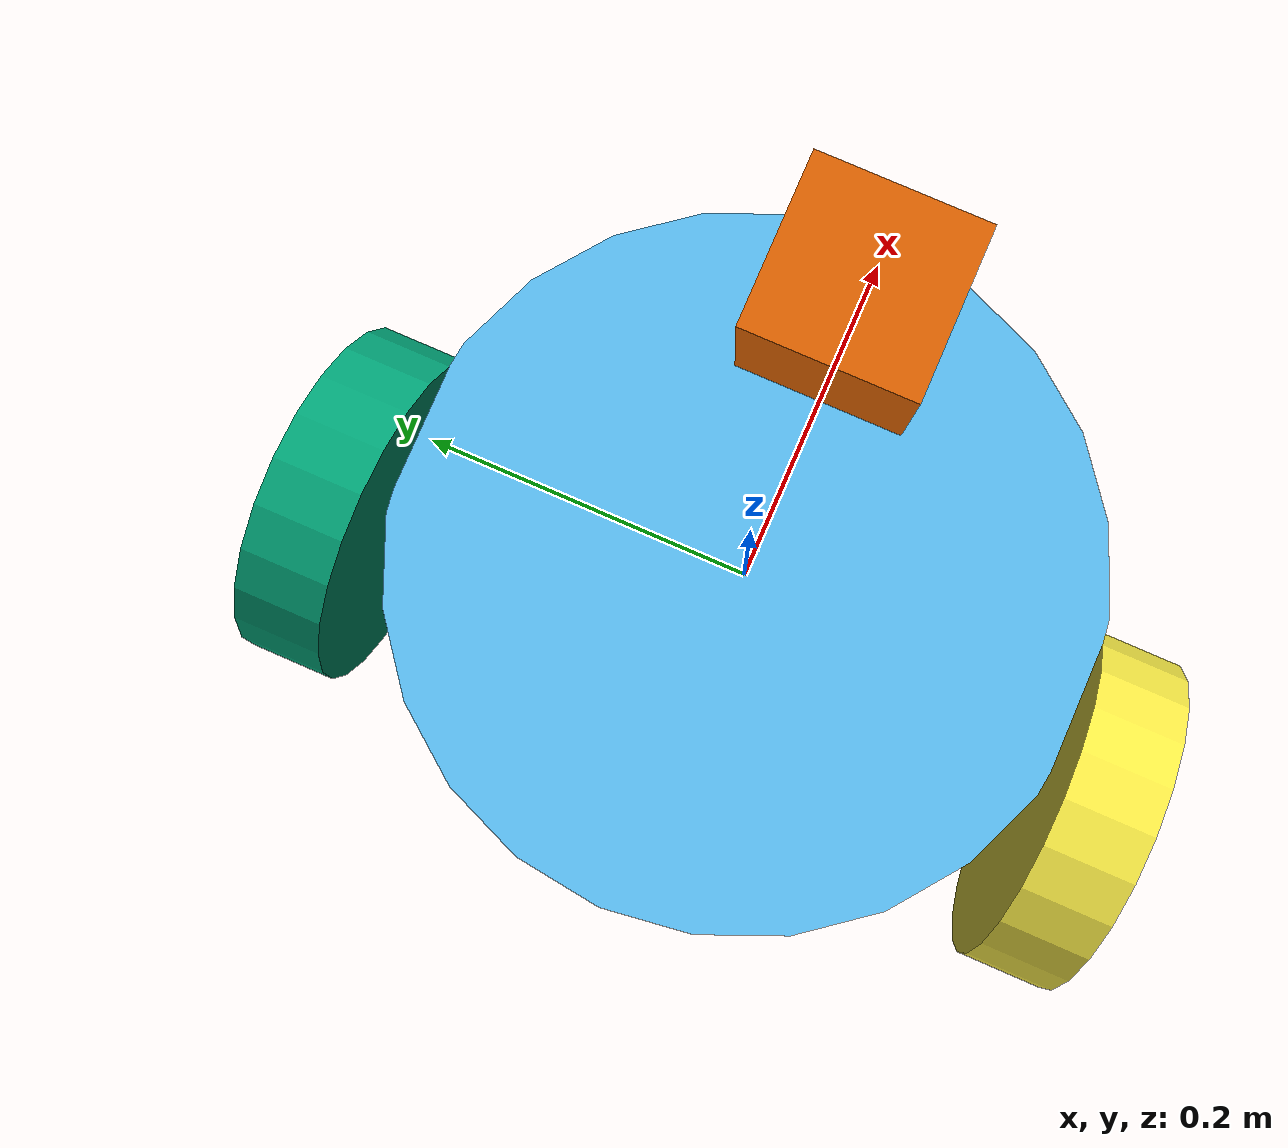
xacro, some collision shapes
<?xml version='1.0'?>

<robot name="my_robot" xmlns:xacro="http://www.ros.org/wiki/xacro">

  <xacro:include filename="$(find my_robot)/urdf/my_robot.gazebo" />   <!-- Include gazebo plugins defined in my_robot.gazebo: -->

  <link name="robot_footprint"></link>

  <joint name="robot_footprint_joint" type="fixed">
    <origin xyz="0 0 0" rpy="0 0 0" />
    <parent link="robot_footprint"/>
    <child link="chassis" />
  </joint>

  <link name='chassis'>
    <pose>0 0 0.1 0 0 0</pose>

    <inertial>
      <mass value="15.0"/>
      <origin xyz="0.0 0 0" rpy=" 0 0 0"/>
      <inertia
          ixx="0.1" ixy="0" ixz="0"
          iyy="0.1" iyz="0"
          izz="0.1"
      />
    </inertial>

    <collision name='collision'>
      <origin xyz="0 0 0" rpy=" 0 0 0"/>
      <geometry>
        <cylinder length="0.07" radius="0.2"/>
      </geometry>
    </collision>

    <visual name='chassis_visual'>
      <origin xyz="0 0 0" rpy=" 0 0 0"/>
      <geometry>
        <cylinder length="0.1" radius="0.2"/>
      </geometry>
    </visual>

    <collision name='front_caster_collision'>
      <origin xyz="0.15 0 -0.05" rpy=" 0 0 0"/>
      <geometry>
        <sphere radius="0.0499"/>
      </geometry>
    </collision>

    <visual name='front_caster_visual'>
      <origin xyz="0.15 0 -0.05" rpy=" 0 0 0"/>
      <geometry>
        <sphere radius="0.05"/>
      </geometry>
    </visual>

  </link>

  <link name='left_wheel'>
    <pose>0 0 0.1 0 0 0</pose>

    <inertial>
      <mass value="5.0"/>
      <origin xyz="0 0 0" rpy=" 0 1.5707 1.5707"/>
      <inertia
          ixx="0.1" ixy="0" ixz="0"
          iyy="0.1" iyz="0"
          izz="0.1"
      />
    </inertial>

    <collision name='collision'>
      <origin xyz="0 0 0" rpy=" 0 1.5707 1.5707"/>
      <geometry>
        <cylinder length="0.05" radius="0.1"/>
      </geometry>
    </collision>

    <visual name='visual'>
      <origin xyz="0 0 0" rpy=" 0 1.5707 1.5707"/>
      <geometry>
        <cylinder length="0.05" radius="0.1"/>
      </geometry>
    </visual>

  </link>

  <joint type="continuous" name="left_wheel_hinge">
    <origin xyz="-0.05 0.22 0" rpy="0 0 0"/>
    <child link="left_wheel"/>
    <parent link="chassis"/>
    <axis xyz="0 1 0" rpy="0 0 0"/>
    <limit effort="10000" velocity="1000"/>
    <dynamics damping="1.0" friction="1.0"/>
  </joint>

  <link name='right_wheel'>
    <pose>0 0 0.1 0 0 0</pose>

    <inertial>
      <mass value="5.0"/>
      <origin xyz="0 0 0" rpy=" 0 1.5707 1.5707"/>
      <inertia
          ixx="0.1" ixy="0" ixz="0"
          iyy="0.1" iyz="0"
          izz="0.1"
      />
    </inertial>

    <collision name='collision'>
      <origin xyz="0 0 0" rpy=" 0 1.5707 1.5707"/>
      <geometry>
        <cylinder length="0.05" radius="0.1"/>
      </geometry>
    </collision>

    <visual name='visual'>
      <origin xyz="0 0 0" rpy=" 0 1.5707 1.5707"/>
      <geometry>
        <cylinder length="0.05" radius="0.1"/>
      </geometry>
    </visual>

  </link>

  <joint type="continuous" name="right_wheel_hinge">
    <origin xyz="-0.05 -0.22 0" rpy="0 0 0"/>
    <child link="right_wheel"/>
    <parent link="chassis"/>
    <axis xyz="0 1 0" rpy="0 0 0"/>
    <limit effort="10000" velocity="1000"/>
    <dynamics damping="1.0" friction="1.0"/>
  </joint>

  <link name='camera'>
    <pose>0 0 0 0 0 0</pose>

    <inertial>
      <mass value="0.1"/>
      <origin xyz="0 0 0" rpy=" 0 0 0"/>
      <inertia
          ixx="1e-6" ixy="0" ixz="0"
          iyy="1e-6" iyz="0"
          izz="1e-6"
      />
    </inertial>

    <collision name='collision'>
      <origin xyz="0 0 0" rpy=" 0 0 0"/>
      <geometry>
        <box size=".05 .05 .05"/>
      </geometry>
    </collision>

    <visual name='camera_visual'>
      <origin xyz="0 0 0" rpy=" 0 0 0"/>
      <geometry>
        <box size=".05 .05 .05"/>
      </geometry>
    </visual>

  </link>

  <joint type="fixed" name="camera_joint">
    <origin xyz="0.2 0 0" rpy="0 0 0"/>
    <child link="camera"/>
    <parent link="chassis"/>
  </joint>

  <link name='hokuyo'>
    <pose>0 0 0 0 0 0</pose>

    <inertial>
      <mass value="0.1"/>
      <origin xyz="0 0 0" rpy=" 0 0 0"/>
      <inertia
          ixx="1e-6" ixy="0" ixz="0"
          iyy="1e-6" iyz="0"
          izz="1e-6"
      />
    </inertial>

    <collision name='collision'>
      <origin xyz="0 0 0" rpy=" 0 0 0"/>
      <geometry>
        <box size="0.1 0.1 0.1"/>
      </geometry>
    </collision>

    <visual name='hokuyo_visual'>
      <origin xyz="0 0 0" rpy=" 0 0 0"/>
      <geometry>
        <mesh filename="package://my_robot/meshes/hokuyo.dae"/>
      </geometry>
    </visual>

  </link>

  <joint type="fixed" name="hokuyo_joint">
    <origin xyz="-0.05 0 0.08" rpy="0 0 0"/>
    <child link="hokuyo"/>
    <parent link="camera"/>
  </joint>

</robot>
